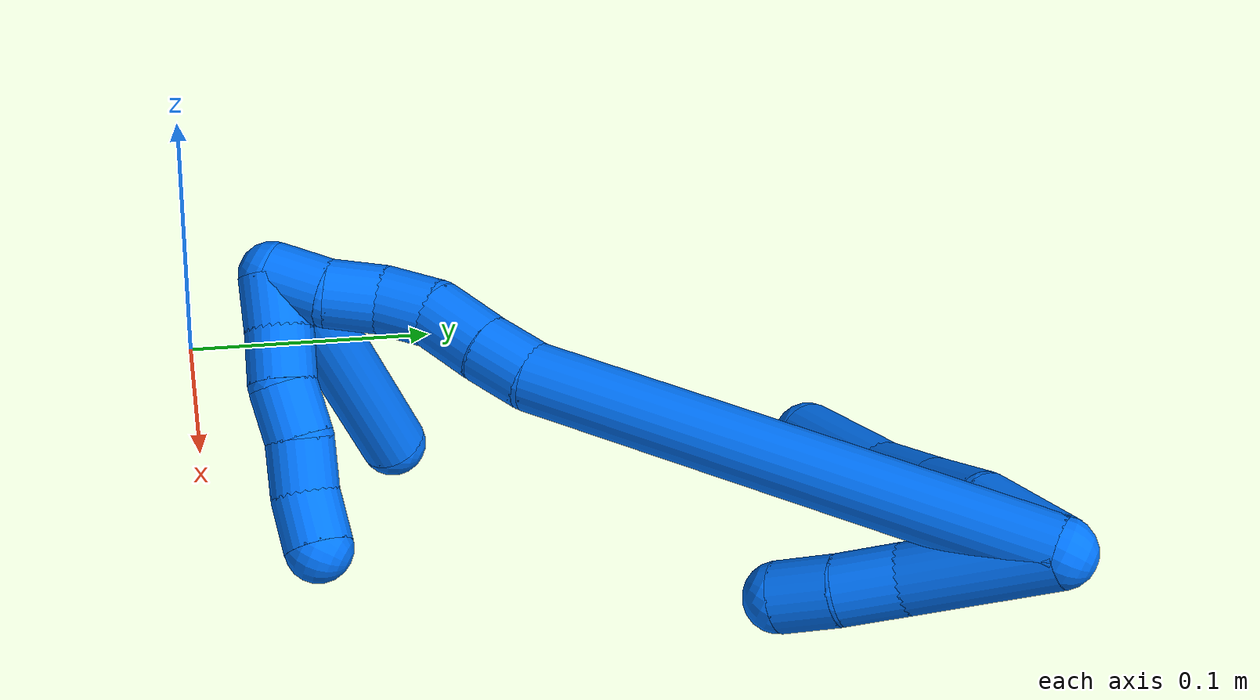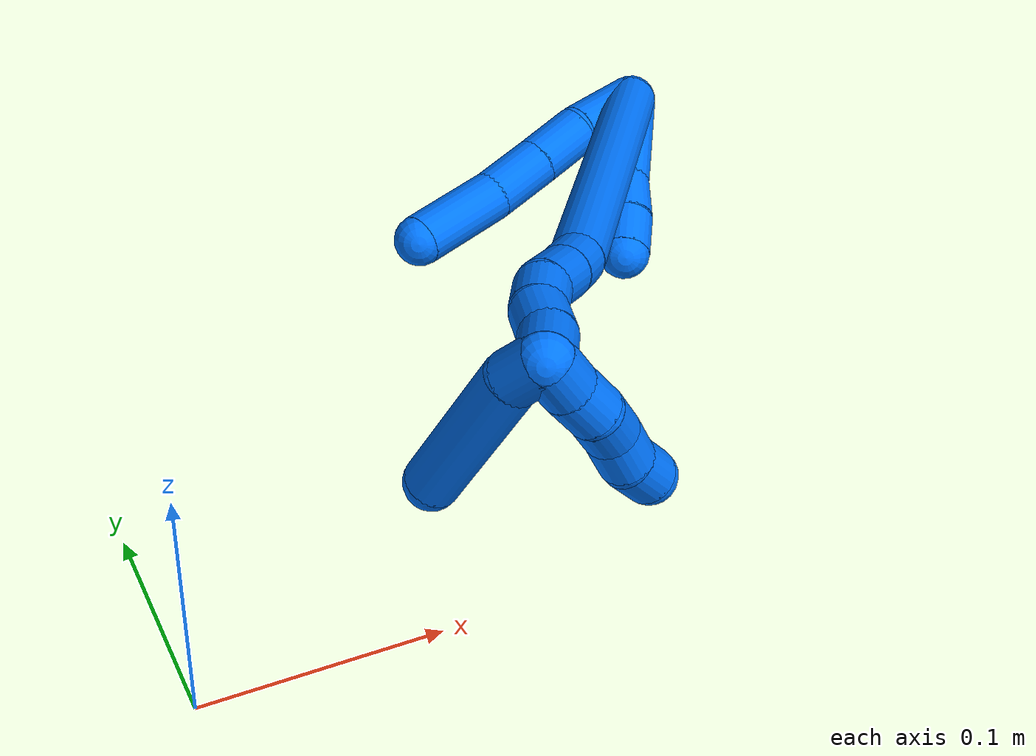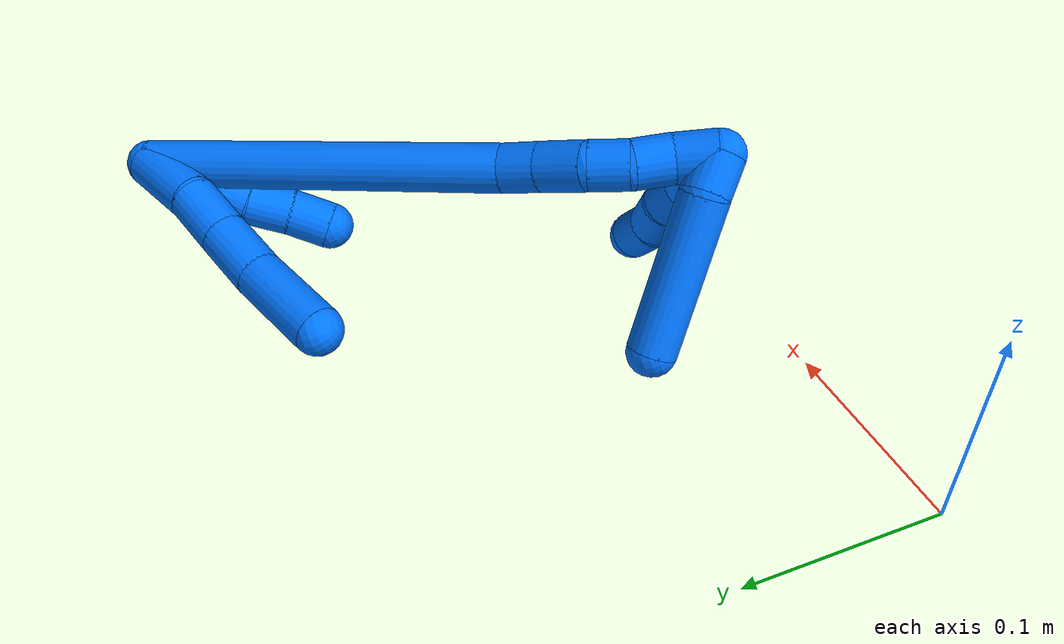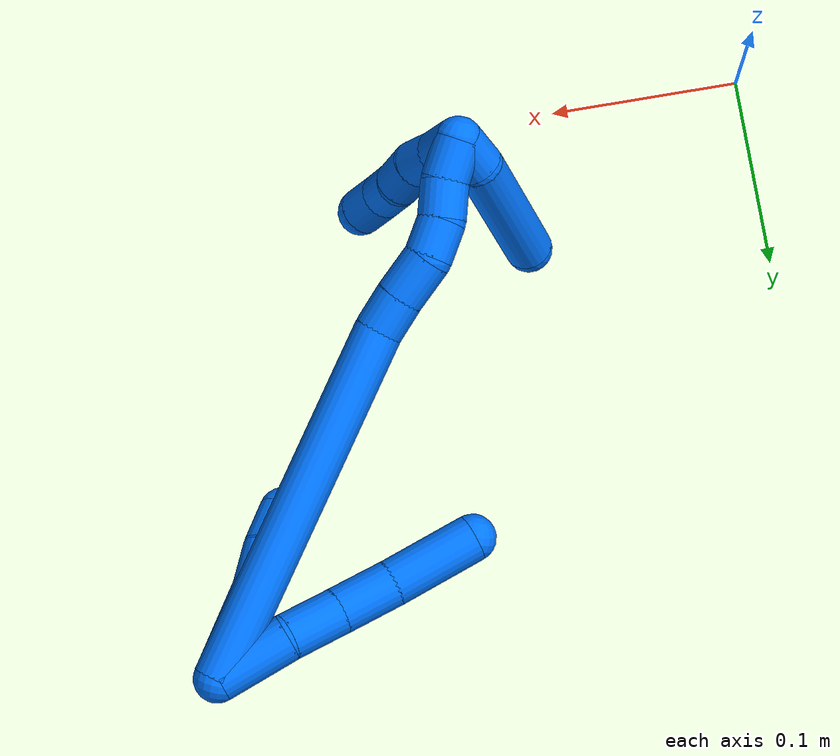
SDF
<sdf version="1.7">
 <world name="default">
  <model name="14">
   <static>0</static>
   <link name="14">
    <collision name="collision-cylinder-e_1_2_8">
     <pose>-0.015423 0.002612 -0.013021 -2.94362 -0.859909 2.71504</pose>
     <geometry><cylinder><radius>0.0125</radius><length>0.040704</length></cylinder></geometry>
     <surface>
      <friction><ode><mu>1.16</mu><mu2>1.16</mu2><slip1>0</slip1><slip2>0</slip2></ode></friction>
      <contact><ode><kp>1e+06</kp><kd>1</kd><max_vel>0</max_vel><min_depth>0.001</min_depth></ode></contact>
     </surface>
    </collision>
    <visual name="visual-cylinder-e_1_2_8">
     <pose>-0.015423 0.002612 -0.013021 -2.94362 -0.859909 2.71504</pose>
     <geometry><cylinder><radius>0.0125</radius><length>0.040704</length></cylinder></geometry>
     <material><ambient>0 0.462745 1 1</ambient></material>
    </visual>
    <collision name="collision-cylinder-e_2_8_9">
     <pose>-0.042711 0.009616 -0.033695 -2.62064 -0.931353 2.16629</pose>
     <geometry><cylinder><radius>0.0125</radius><length>0.029576</length></cylinder></geometry>
     <surface>
      <friction><ode><mu>1.16</mu><mu2>1.16</mu2><slip1>0</slip1><slip2>0</slip2></ode></friction>
      <contact><ode><kp>1e+06</kp><kd>1</kd><max_vel>0</max_vel><min_depth>0.001</min_depth></ode></contact>
     </surface>
    </collision>
    <visual name="visual-cylinder-e_2_8_9">
     <pose>-0.042711 0.009616 -0.033695 -2.62064 -0.931353 2.16629</pose>
     <geometry><cylinder><radius>0.0125</radius><length>0.029576</length></cylinder></geometry>
     <material><ambient>0 0.462745 1 1</ambient></material>
    </visual>
    <collision name="collision-cylinder-e_3_9_10">
     <pose>-0.067188 0.018369 -0.049759 -2.66322 -0.9265 2.23327</pose>
     <geometry><cylinder><radius>0.0125</radius><length>0.031544</length></cylinder></geometry>
     <surface>
      <friction><ode><mu>1.16</mu><mu2>1.16</mu2><slip1>0</slip1><slip2>0</slip2></ode></friction>
      <contact><ode><kp>1e+06</kp><kd>1</kd><max_vel>0</max_vel><min_depth>0.001</min_depth></ode></contact>
     </surface>
    </collision>
    <visual name="visual-cylinder-e_3_9_10">
     <pose>-0.067188 0.018369 -0.049759 -2.66322 -0.9265 2.23327</pose>
     <geometry><cylinder><radius>0.0125</radius><length>0.031544</length></cylinder></geometry>
     <material><ambient>0 0.462745 1 1</ambient></material>
    </visual>
    <collision name="collision-cylinder-e_4_10_6">
     <pose>-0.098491 0.026777 -0.072812 -2.87192 -0.888338 2.58619</pose>
     <geometry><cylinder><radius>0.0125</radius><length>0.048175</length></cylinder></geometry>
     <surface>
      <friction><ode><mu>1.16</mu><mu2>1.16</mu2><slip1>0</slip1><slip2>0</slip2></ode></friction>
      <contact><ode><kp>1e+06</kp><kd>1</kd><max_vel>0</max_vel><min_depth>0.001</min_depth></ode></contact>
     </surface>
    </collision>
    <visual name="visual-cylinder-e_4_10_6">
     <pose>-0.098491 0.026777 -0.072812 -2.87192 -0.888338 2.58619</pose>
     <geometry><cylinder><radius>0.0125</radius><length>0.048175</length></cylinder></geometry>
     <material><ambient>0 0.462745 1 1</ambient></material>
    </visual>
    <collision name="collision-cylinder-e_1_2_11">
     <pose>-0.007092 0.017433 -0.019653 -2.41598 -0.263671 0.672134</pose>
     <geometry><cylinder><radius>0.0125</radius><length>0.054423</length></cylinder></geometry>
     <surface>
      <friction><ode><mu>1.16</mu><mu2>1.16</mu2><slip1>0</slip1><slip2>0</slip2></ode></friction>
      <contact><ode><kp>1e+06</kp><kd>1</kd><max_vel>0</max_vel><min_depth>0.001</min_depth></ode></contact>
     </surface>
    </collision>
    <visual name="visual-cylinder-e_1_2_11">
     <pose>-0.007092 0.017433 -0.019653 -2.41598 -0.263671 0.672134</pose>
     <geometry><cylinder><radius>0.0125</radius><length>0.054423</length></cylinder></geometry>
     <material><ambient>0 0.462745 1 1</ambient></material>
    </visual>
    <collision name="collision-cylinder-e_2_11_12">
     <pose>-0.015649 0.042216 -0.048288 -2.45578 -0.125548 0.348557</pose>
     <geometry><cylinder><radius>0.0125</radius><length>0.023394</length></cylinder></geometry>
     <surface>
      <friction><ode><mu>1.16</mu><mu2>1.16</mu2><slip1>0</slip1><slip2>0</slip2></ode></friction>
      <contact><ode><kp>1e+06</kp><kd>1</kd><max_vel>0</max_vel><min_depth>0.001</min_depth></ode></contact>
     </surface>
    </collision>
    <visual name="visual-cylinder-e_2_11_12">
     <pose>-0.015649 0.042216 -0.048288 -2.45578 -0.125548 0.348557</pose>
     <geometry><cylinder><radius>0.0125</radius><length>0.023394</length></cylinder></geometry>
     <material><ambient>0 0.462745 1 1</ambient></material>
    </visual>
    <collision name="collision-cylinder-e_3_12_5">
     <pose>-0.019961 0.056199 -0.06569 -2.47439 -0.259608 0.720473</pose>
     <geometry><cylinder><radius>0.0125</radius><length>0.022183</length></cylinder></geometry>
     <surface>
      <friction><ode><mu>1.16</mu><mu2>1.16</mu2><slip1>0</slip1><slip2>0</slip2></ode></friction>
      <contact><ode><kp>1e+06</kp><kd>1</kd><max_vel>0</max_vel><min_depth>0.001</min_depth></ode></contact>
     </surface>
    </collision>
    <visual name="visual-cylinder-e_3_12_5">
     <pose>-0.019961 0.056199 -0.06569 -2.47439 -0.259608 0.720473</pose>
     <geometry><cylinder><radius>0.0125</radius><length>0.022183</length></cylinder></geometry>
     <material><ambient>0 0.462745 1 1</ambient></material>
    </visual>
    <collision name="collision-cylinder-e_1_2_13">
     <pose>-0.023141 0.018906 -0.091862 -2.93862 -0.241903 1.7468</pose>
     <geometry><cylinder><radius>0.0125</radius><length>0.193201</length></cylinder></geometry>
     <surface>
      <friction><ode><mu>1.16</mu><mu2>1.16</mu2><slip1>0</slip1><slip2>0</slip2></ode></friction>
      <contact><ode><kp>1e+06</kp><kd>1</kd><max_vel>0</max_vel><min_depth>0.001</min_depth></ode></contact>
     </surface>
    </collision>
    <visual name="visual-cylinder-e_1_2_13">
     <pose>-0.023141 0.018906 -0.091862 -2.93862 -0.241903 1.7468</pose>
     <geometry><cylinder><radius>0.0125</radius><length>0.193201</length></cylinder></geometry>
     <material><ambient>0 0.462745 1 1</ambient></material>
    </visual>
    <collision name="collision-cylinder-e_2_13_14">
     <pose>-0.049678 0.037925 -0.193407 -3.12988 -0.337413 3.07287</pose>
     <geometry><cylinder><radius>0.0125</radius><length>0.020523</length></cylinder></geometry>
     <surface>
      <friction><ode><mu>1.16</mu><mu2>1.16</mu2><slip1>0</slip1><slip2>0</slip2></ode></friction>
      <contact><ode><kp>1e+06</kp><kd>1</kd><max_vel>0</max_vel><min_depth>0.001</min_depth></ode></contact>
     </surface>
    </collision>
    <visual name="visual-cylinder-e_2_13_14">
     <pose>-0.049678 0.037925 -0.193407 -3.12988 -0.337413 3.07287</pose>
     <geometry><cylinder><radius>0.0125</radius><length>0.020523</length></cylinder></geometry>
     <material><ambient>0 0.462745 1 1</ambient></material>
    </visual>
    <collision name="collision-cylinder-e_3_14_15">
     <pose>-0.057759 0.037613 -0.21438 3.1039 -0.392951 -2.95277</pose>
     <geometry><cylinder><radius>0.0125</radius><length>0.024461</length></cylinder></geometry>
     <surface>
      <friction><ode><mu>1.16</mu><mu2>1.16</mu2><slip1>0</slip1><slip2>0</slip2></ode></friction>
      <contact><ode><kp>1e+06</kp><kd>1</kd><max_vel>0</max_vel><min_depth>0.001</min_depth></ode></contact>
     </surface>
    </collision>
    <visual name="visual-cylinder-e_3_14_15">
     <pose>-0.057759 0.037613 -0.21438 3.1039 -0.392951 -2.95277</pose>
     <geometry><cylinder><radius>0.0125</radius><length>0.024461</length></cylinder></geometry>
     <material><ambient>0 0.462745 1 1</ambient></material>
    </visual>
    <collision name="collision-cylinder-e_4_15_16">
     <pose>-0.064119 0.03952 -0.235308 -2.90408 -0.167542 1.22643</pose>
     <geometry><cylinder><radius>0.0125</radius><length>0.020113</length></cylinder></geometry>
     <surface>
      <friction><ode><mu>1.16</mu><mu2>1.16</mu2><slip1>0</slip1><slip2>0</slip2></ode></friction>
      <contact><ode><kp>1e+06</kp><kd>1</kd><max_vel>0</max_vel><min_depth>0.001</min_depth></ode></contact>
     </surface>
    </collision>
    <visual name="visual-cylinder-e_4_15_16">
     <pose>-0.064119 0.03952 -0.235308 -2.90408 -0.167542 1.22643</pose>
     <geometry><cylinder><radius>0.0125</radius><length>0.020113</length></cylinder></geometry>
     <material><ambient>0 0.462745 1 1</ambient></material>
    </visual>
    <collision name="collision-cylinder-e_5_16_17">
     <pose>-0.06486 0.045086 -0.254481 -2.81476 0.092733 -0.548628</pose>
     <geometry><cylinder><radius>0.0125</radius><length>0.020225</length></cylinder></geometry>
     <surface>
      <friction><ode><mu>1.16</mu><mu2>1.16</mu2><slip1>0</slip1><slip2>0</slip2></ode></friction>
      <contact><ode><kp>1e+06</kp><kd>1</kd><max_vel>0</max_vel><min_depth>0.001</min_depth></ode></contact>
     </surface>
    </collision>
    <visual name="visual-cylinder-e_5_16_17">
     <pose>-0.06486 0.045086 -0.254481 -2.81476 0.092733 -0.548628</pose>
     <geometry><cylinder><radius>0.0125</radius><length>0.020225</length></cylinder></geometry>
     <material><ambient>0 0.462745 1 1</ambient></material>
    </visual>
    <collision name="collision-cylinder-e_6_17_1">
     <pose>-0.065277 0.050227 -0.274498 -2.96147 -0.126439 1.2228</pose>
     <geometry><cylinder><radius>0.0125</radius><length>0.021476</length></cylinder></geometry>
     <surface>
      <friction><ode><mu>1.16</mu><mu2>1.16</mu2><slip1>0</slip1><slip2>0</slip2></ode></friction>
      <contact><ode><kp>1e+06</kp><kd>1</kd><max_vel>0</max_vel><min_depth>0.001</min_depth></ode></contact>
     </surface>
    </collision>
    <visual name="visual-cylinder-e_6_17_1">
     <pose>-0.065277 0.050227 -0.274498 -2.96147 -0.126439 1.2228</pose>
     <geometry><cylinder><radius>0.0125</radius><length>0.021476</length></cylinder></geometry>
     <material><ambient>0 0.462745 1 1</ambient></material>
    </visual>
    <collision name="collision-cylinder-e_1_1_18">
     <pose>-0.063667 0.0599 -0.279417 -0.94927 0.301006 -0.155524</pose>
     <geometry><cylinder><radius>0.0125</radius><length>0.02</length></cylinder></geometry>
     <surface>
      <friction><ode><mu>1.16</mu><mu2>1.16</mu2><slip1>0</slip1><slip2>0</slip2></ode></friction>
      <contact><ode><kp>1e+06</kp><kd>1</kd><max_vel>0</max_vel><min_depth>0.001</min_depth></ode></contact>
     </surface>
    </collision>
    <visual name="visual-cylinder-e_1_1_18">
     <pose>-0.063667 0.0599 -0.279417 -0.94927 0.301006 -0.155524</pose>
     <geometry><cylinder><radius>0.0125</radius><length>0.02</length></cylinder></geometry>
     <material><ambient>0 0.462745 1 1</ambient></material>
    </visual>
    <collision name="collision-cylinder-e_2_18_19">
     <pose>-0.056791 0.075274 -0.268679 -0.973476 0.401762 -0.214693</pose>
     <geometry><cylinder><radius>0.0125</radius><length>0.02</length></cylinder></geometry>
     <surface>
      <friction><ode><mu>1.16</mu><mu2>1.16</mu2><slip1>0</slip1><slip2>0</slip2></ode></friction>
      <contact><ode><kp>1e+06</kp><kd>1</kd><max_vel>0</max_vel><min_depth>0.001</min_depth></ode></contact>
     </surface>
    </collision>
    <visual name="visual-cylinder-e_2_18_19">
     <pose>-0.056791 0.075274 -0.268679 -0.973476 0.401762 -0.214693</pose>
     <geometry><cylinder><radius>0.0125</radius><length>0.02</length></cylinder></geometry>
     <material><ambient>0 0.462745 1 1</ambient></material>
    </visual>
    <collision name="collision-cylinder-e_3_19_20">
     <pose>-0.050833 0.089762 -0.256539 -0.779167 0.206223 -0.084919</pose>
     <geometry><cylinder><radius>0.0125</radius><length>0.02</length></cylinder></geometry>
     <surface>
      <friction><ode><mu>1.16</mu><mu2>1.16</mu2><slip1>0</slip1><slip2>0</slip2></ode></friction>
      <contact><ode><kp>1e+06</kp><kd>1</kd><max_vel>0</max_vel><min_depth>0.001</min_depth></ode></contact>
     </surface>
    </collision>
    <visual name="visual-cylinder-e_3_19_20">
     <pose>-0.050833 0.089762 -0.256539 -0.779167 0.206223 -0.084919</pose>
     <geometry><cylinder><radius>0.0125</radius><length>0.02</length></cylinder></geometry>
     <material><ambient>0 0.462745 1 1</ambient></material>
    </visual>
    <collision name="collision-cylinder-e_4_20_21">
     <pose>-0.046881 0.104888 -0.244251 -0.997693 0.191621 -0.104621</pose>
     <geometry><cylinder><radius>0.0125</radius><length>0.02</length></cylinder></geometry>
     <surface>
      <friction><ode><mu>1.16</mu><mu2>1.16</mu2><slip1>0</slip1><slip2>0</slip2></ode></friction>
      <contact><ode><kp>1e+06</kp><kd>1</kd><max_vel>0</max_vel><min_depth>0.001</min_depth></ode></contact>
     </surface>
    </collision>
    <visual name="visual-cylinder-e_4_20_21">
     <pose>-0.046881 0.104888 -0.244251 -0.997693 0.191621 -0.104621</pose>
     <geometry><cylinder><radius>0.0125</radius><length>0.02</length></cylinder></geometry>
     <material><ambient>0 0.462745 1 1</ambient></material>
    </visual>
    <collision name="collision-cylinder-e_5_21_4">
     <pose>-0.04121 0.119617 -0.232308 -0.774723 0.386211 -0.159215</pose>
     <geometry><cylinder><radius>0.0125</radius><length>0.02</length></cylinder></geometry>
     <surface>
      <friction><ode><mu>1.16</mu><mu2>1.16</mu2><slip1>0</slip1><slip2>0</slip2></ode></friction>
      <contact><ode><kp>1e+06</kp><kd>1</kd><max_vel>0</max_vel><min_depth>0.001</min_depth></ode></contact>
     </surface>
    </collision>
    <visual name="visual-cylinder-e_5_21_4">
     <pose>-0.04121 0.119617 -0.232308 -0.774723 0.386211 -0.159215</pose>
     <geometry><cylinder><radius>0.0125</radius><length>0.02</length></cylinder></geometry>
     <material><ambient>0 0.462745 1 1</ambient></material>
    </visual>
    <collision name="collision-cylinder-e_1_1_22">
     <pose>-0.074058 0.055799 -0.279102 -0.557551 -0.820361 0.247657</pose>
     <geometry><cylinder><radius>0.0125</radius><length>0.020309</length></cylinder></geometry>
     <surface>
      <friction><ode><mu>1.16</mu><mu2>1.16</mu2><slip1>0</slip1><slip2>0</slip2></ode></friction>
      <contact><ode><kp>1e+06</kp><kd>1</kd><max_vel>0</max_vel><min_depth>0.001</min_depth></ode></contact>
     </surface>
    </collision>
    <visual name="visual-cylinder-e_1_1_22">
     <pose>-0.074058 0.055799 -0.279102 -0.557551 -0.820361 0.247657</pose>
     <geometry><cylinder><radius>0.0125</radius><length>0.020309</length></cylinder></geometry>
     <material><ambient>0 0.462745 1 1</ambient></material>
    </visual>
    <collision name="collision-cylinder-e_2_22_3">
     <pose>-0.103902 0.083206 -0.25039 -0.804872 -0.597506 0.2607</pose>
     <geometry><cylinder><radius>0.0125</radius><length>0.079691</length></cylinder></geometry>
     <surface>
      <friction><ode><mu>1.16</mu><mu2>1.16</mu2><slip1>0</slip1><slip2>0</slip2></ode></friction>
      <contact><ode><kp>1e+06</kp><kd>1</kd><max_vel>0</max_vel><min_depth>0.001</min_depth></ode></contact>
     </surface>
    </collision>
    <visual name="visual-cylinder-e_2_22_3">
     <pose>-0.103902 0.083206 -0.25039 -0.804872 -0.597506 0.2607</pose>
     <geometry><cylinder><radius>0.0125</radius><length>0.079691</length></cylinder></geometry>
     <material><ambient>0 0.462745 1 1</ambient></material>
    </visual>
    <collision name="collision-sphere-3">
     <pose>-0.126318 0.106949 -0.227555 0 -0 0</pose>
     <geometry><sphere><radius>0.0125</radius></sphere></geometry>
     <surface>
      <friction><ode><mu>1.16</mu><mu2>1.16</mu2><slip1>0</slip1><slip2>0</slip2></ode></friction>
      <contact><ode><kp>1e+06</kp><kd>1</kd><max_vel>0</max_vel><min_depth>0.001</min_depth></ode></contact>
     </surface>
    </collision>
    <visual name="visual-sphere-3">
     <pose>-0.126318 0.106949 -0.227555 0 -0 0</pose>
     <geometry><sphere><radius>0.0125</radius></sphere></geometry>
     <material><ambient>0 0.462745 1 1</ambient></material>
    </visual>
    <collision name="collision-sphere-22">
     <pose>-0.081485 0.059463 -0.273226 0 -0 0</pose>
     <geometry><sphere><radius>0.0125</radius></sphere></geometry>
     <surface>
      <friction><ode><mu>1.16</mu><mu2>1.16</mu2><slip1>0</slip1><slip2>0</slip2></ode></friction>
      <contact><ode><kp>1e+06</kp><kd>1</kd><max_vel>0</max_vel><min_depth>0.001</min_depth></ode></contact>
     </surface>
    </collision>
    <visual name="visual-sphere-22">
     <pose>-0.081485 0.059463 -0.273226 0 -0 0</pose>
     <geometry><sphere><radius>0.0125</radius></sphere></geometry>
     <material><ambient>0 0.462745 1 1</ambient></material>
    </visual>
    <collision name="collision-sphere-4">
     <pose>-0.037443 0.126097 -0.225689 0 -0 0</pose>
     <geometry><sphere><radius>0.0125</radius></sphere></geometry>
     <surface>
      <friction><ode><mu>1.16</mu><mu2>1.16</mu2><slip1>0</slip1><slip2>0</slip2></ode></friction>
      <contact><ode><kp>1e+06</kp><kd>1</kd><max_vel>0</max_vel><min_depth>0.001</min_depth></ode></contact>
     </surface>
    </collision>
    <visual name="visual-sphere-4">
     <pose>-0.037443 0.126097 -0.225689 0 -0 0</pose>
     <geometry><sphere><radius>0.0125</radius></sphere></geometry>
     <material><ambient>0 0.462745 1 1</ambient></material>
    </visual>
    <collision name="collision-sphere-21">
     <pose>-0.044977 0.113137 -0.238928 0 -0 0</pose>
     <geometry><sphere><radius>0.0125</radius></sphere></geometry>
     <surface>
      <friction><ode><mu>1.16</mu><mu2>1.16</mu2><slip1>0</slip1><slip2>0</slip2></ode></friction>
      <contact><ode><kp>1e+06</kp><kd>1</kd><max_vel>0</max_vel><min_depth>0.001</min_depth></ode></contact>
     </surface>
    </collision>
    <visual name="visual-sphere-21">
     <pose>-0.044977 0.113137 -0.238928 0 -0 0</pose>
     <geometry><sphere><radius>0.0125</radius></sphere></geometry>
     <material><ambient>0 0.462745 1 1</ambient></material>
    </visual>
    <collision name="collision-sphere-20">
     <pose>-0.048786 0.09664 -0.249575 0 -0 0</pose>
     <geometry><sphere><radius>0.0125</radius></sphere></geometry>
     <surface>
      <friction><ode><mu>1.16</mu><mu2>1.16</mu2><slip1>0</slip1><slip2>0</slip2></ode></friction>
      <contact><ode><kp>1e+06</kp><kd>1</kd><max_vel>0</max_vel><min_depth>0.001</min_depth></ode></contact>
     </surface>
    </collision>
    <visual name="visual-sphere-20">
     <pose>-0.048786 0.09664 -0.249575 0 -0 0</pose>
     <geometry><sphere><radius>0.0125</radius></sphere></geometry>
     <material><ambient>0 0.462745 1 1</ambient></material>
    </visual>
    <collision name="collision-sphere-11">
     <pose>-0.014184 0.034867 -0.039307 0 -0 0</pose>
     <geometry><sphere><radius>0.0125</radius></sphere></geometry>
     <surface>
      <friction><ode><mu>1.16</mu><mu2>1.16</mu2><slip1>0</slip1><slip2>0</slip2></ode></friction>
      <contact><ode><kp>1e+06</kp><kd>1</kd><max_vel>0</max_vel><min_depth>0.001</min_depth></ode></contact>
     </surface>
    </collision>
    <visual name="visual-sphere-11">
     <pose>-0.014184 0.034867 -0.039307 0 -0 0</pose>
     <geometry><sphere><radius>0.0125</radius></sphere></geometry>
     <material><ambient>0 0.462745 1 1</ambient></material>
    </visual>
    <collision name="collision-sphere-6">
     <pose>-0.117183 0.030825 -0.087455 0 -0 0</pose>
     <geometry><sphere><radius>0.0125</radius></sphere></geometry>
     <surface>
      <friction><ode><mu>1.16</mu><mu2>1.16</mu2><slip1>0</slip1><slip2>0</slip2></ode></friction>
      <contact><ode><kp>1e+06</kp><kd>1</kd><max_vel>0</max_vel><min_depth>0.001</min_depth></ode></contact>
     </surface>
    </collision>
    <visual name="visual-sphere-6">
     <pose>-0.117183 0.030825 -0.087455 0 -0 0</pose>
     <geometry><sphere><radius>0.0125</radius></sphere></geometry>
     <material><ambient>0 0.462745 1 1</ambient></material>
    </visual>
    <collision name="collision-sphere-10">
     <pose>-0.079798 0.02273 -0.058169 0 -0 0</pose>
     <geometry><sphere><radius>0.0125</radius></sphere></geometry>
     <surface>
      <friction><ode><mu>1.16</mu><mu2>1.16</mu2><slip1>0</slip1><slip2>0</slip2></ode></friction>
      <contact><ode><kp>1e+06</kp><kd>1</kd><max_vel>0</max_vel><min_depth>0.001</min_depth></ode></contact>
     </surface>
    </collision>
    <visual name="visual-sphere-10">
     <pose>-0.079798 0.02273 -0.058169 0 -0 0</pose>
     <geometry><sphere><radius>0.0125</radius></sphere></geometry>
     <material><ambient>0 0.462745 1 1</ambient></material>
    </visual>
    <collision name="collision-sphere-9">
     <pose>-0.054578 0.014008 -0.041349 0 -0 0</pose>
     <geometry><sphere><radius>0.0125</radius></sphere></geometry>
     <surface>
      <friction><ode><mu>1.16</mu><mu2>1.16</mu2><slip1>0</slip1><slip2>0</slip2></ode></friction>
      <contact><ode><kp>1e+06</kp><kd>1</kd><max_vel>0</max_vel><min_depth>0.001</min_depth></ode></contact>
     </surface>
    </collision>
    <visual name="visual-sphere-9">
     <pose>-0.054578 0.014008 -0.041349 0 -0 0</pose>
     <geometry><sphere><radius>0.0125</radius></sphere></geometry>
     <material><ambient>0 0.462745 1 1</ambient></material>
    </visual>
    <collision name="collision-sphere-2">
     <geometry><sphere><radius>0.0125</radius></sphere></geometry>
     <surface>
      <friction><ode><mu>1.16</mu><mu2>1.16</mu2><slip1>0</slip1><slip2>0</slip2></ode></friction>
      <contact><ode><kp>1e+06</kp><kd>1</kd><max_vel>0</max_vel><min_depth>0.001</min_depth></ode></contact>
     </surface>
    </collision>
    <visual name="visual-sphere-2">
     <geometry><sphere><radius>0.0125</radius></sphere></geometry>
     <material><ambient>0 0.462745 1 1</ambient></material>
    </visual>
    <collision name="collision-sphere-19">
     <pose>-0.052881 0.082884 -0.263503 0 -0 0</pose>
     <geometry><sphere><radius>0.0125</radius></sphere></geometry>
     <surface>
      <friction><ode><mu>1.16</mu><mu2>1.16</mu2><slip1>0</slip1><slip2>0</slip2></ode></friction>
      <contact><ode><kp>1e+06</kp><kd>1</kd><max_vel>0</max_vel><min_depth>0.001</min_depth></ode></contact>
     </surface>
    </collision>
    <visual name="visual-sphere-19">
     <pose>-0.052881 0.082884 -0.263503 0 -0 0</pose>
     <geometry><sphere><radius>0.0125</radius></sphere></geometry>
     <material><ambient>0 0.462745 1 1</ambient></material>
    </visual>
    <collision name="collision-sphere-8">
     <pose>-0.030845 0.005224 -0.026041 0 -0 0</pose>
     <geometry><sphere><radius>0.0125</radius></sphere></geometry>
     <surface>
      <friction><ode><mu>1.16</mu><mu2>1.16</mu2><slip1>0</slip1><slip2>0</slip2></ode></friction>
      <contact><ode><kp>1e+06</kp><kd>1</kd><max_vel>0</max_vel><min_depth>0.001</min_depth></ode></contact>
     </surface>
    </collision>
    <visual name="visual-sphere-8">
     <pose>-0.030845 0.005224 -0.026041 0 -0 0</pose>
     <geometry><sphere><radius>0.0125</radius></sphere></geometry>
     <material><ambient>0 0.462745 1 1</ambient></material>
    </visual>
    <collision name="collision-sphere-12">
     <pose>-0.017113 0.049566 -0.057269 0 -0 0</pose>
     <geometry><sphere><radius>0.0125</radius></sphere></geometry>
     <surface>
      <friction><ode><mu>1.16</mu><mu2>1.16</mu2><slip1>0</slip1><slip2>0</slip2></ode></friction>
      <contact><ode><kp>1e+06</kp><kd>1</kd><max_vel>0</max_vel><min_depth>0.001</min_depth></ode></contact>
     </surface>
    </collision>
    <visual name="visual-sphere-12">
     <pose>-0.017113 0.049566 -0.057269 0 -0 0</pose>
     <geometry><sphere><radius>0.0125</radius></sphere></geometry>
     <material><ambient>0 0.462745 1 1</ambient></material>
    </visual>
    <collision name="collision-sphere-5">
     <pose>-0.022808 0.062832 -0.074111 0 -0 0</pose>
     <geometry><sphere><radius>0.0125</radius></sphere></geometry>
     <surface>
      <friction><ode><mu>1.16</mu><mu2>1.16</mu2><slip1>0</slip1><slip2>0</slip2></ode></friction>
      <contact><ode><kp>1e+06</kp><kd>1</kd><max_vel>0</max_vel><min_depth>0.001</min_depth></ode></contact>
     </surface>
    </collision>
    <visual name="visual-sphere-5">
     <pose>-0.022808 0.062832 -0.074111 0 -0 0</pose>
     <geometry><sphere><radius>0.0125</radius></sphere></geometry>
     <material><ambient>0 0.462745 1 1</ambient></material>
    </visual>
    <collision name="collision-sphere-13">
     <pose>-0.046281 0.037812 -0.183725 0 -0 0</pose>
     <geometry><sphere><radius>0.0125</radius></sphere></geometry>
     <surface>
      <friction><ode><mu>1.16</mu><mu2>1.16</mu2><slip1>0</slip1><slip2>0</slip2></ode></friction>
      <contact><ode><kp>1e+06</kp><kd>1</kd><max_vel>0</max_vel><min_depth>0.001</min_depth></ode></contact>
     </surface>
    </collision>
    <visual name="visual-sphere-13">
     <pose>-0.046281 0.037812 -0.183725 0 -0 0</pose>
     <geometry><sphere><radius>0.0125</radius></sphere></geometry>
     <material><ambient>0 0.462745 1 1</ambient></material>
    </visual>
    <collision name="collision-sphere-14">
     <pose>-0.053075 0.038039 -0.203089 0 -0 0</pose>
     <geometry><sphere><radius>0.0125</radius></sphere></geometry>
     <surface>
      <friction><ode><mu>1.16</mu><mu2>1.16</mu2><slip1>0</slip1><slip2>0</slip2></ode></friction>
      <contact><ode><kp>1e+06</kp><kd>1</kd><max_vel>0</max_vel><min_depth>0.001</min_depth></ode></contact>
     </surface>
    </collision>
    <visual name="visual-sphere-14">
     <pose>-0.053075 0.038039 -0.203089 0 -0 0</pose>
     <geometry><sphere><radius>0.0125</radius></sphere></geometry>
     <material><ambient>0 0.462745 1 1</ambient></material>
    </visual>
    <collision name="collision-sphere-15">
     <pose>-0.062442 0.037187 -0.22567 0 -0 0</pose>
     <geometry><sphere><radius>0.0125</radius></sphere></geometry>
     <surface>
      <friction><ode><mu>1.16</mu><mu2>1.16</mu2><slip1>0</slip1><slip2>0</slip2></ode></friction>
      <contact><ode><kp>1e+06</kp><kd>1</kd><max_vel>0</max_vel><min_depth>0.001</min_depth></ode></contact>
     </surface>
    </collision>
    <visual name="visual-sphere-15">
     <pose>-0.062442 0.037187 -0.22567 0 -0 0</pose>
     <geometry><sphere><radius>0.0125</radius></sphere></geometry>
     <material><ambient>0 0.462745 1 1</ambient></material>
    </visual>
    <collision name="collision-sphere-16">
     <pose>-0.065796 0.041853 -0.244945 0 -0 0</pose>
     <geometry><sphere><radius>0.0125</radius></sphere></geometry>
     <surface>
      <friction><ode><mu>1.16</mu><mu2>1.16</mu2><slip1>0</slip1><slip2>0</slip2></ode></friction>
      <contact><ode><kp>1e+06</kp><kd>1</kd><max_vel>0</max_vel><min_depth>0.001</min_depth></ode></contact>
     </surface>
    </collision>
    <visual name="visual-sphere-16">
     <pose>-0.065796 0.041853 -0.244945 0 -0 0</pose>
     <geometry><sphere><radius>0.0125</radius></sphere></geometry>
     <material><ambient>0 0.462745 1 1</ambient></material>
    </visual>
    <collision name="collision-sphere-17">
     <pose>-0.063923 0.048318 -0.264017 0 -0 0</pose>
     <geometry><sphere><radius>0.0125</radius></sphere></geometry>
     <surface>
      <friction><ode><mu>1.16</mu><mu2>1.16</mu2><slip1>0</slip1><slip2>0</slip2></ode></friction>
      <contact><ode><kp>1e+06</kp><kd>1</kd><max_vel>0</max_vel><min_depth>0.001</min_depth></ode></contact>
     </surface>
    </collision>
    <visual name="visual-sphere-17">
     <pose>-0.063923 0.048318 -0.264017 0 -0 0</pose>
     <geometry><sphere><radius>0.0125</radius></sphere></geometry>
     <material><ambient>0 0.462745 1 1</ambient></material>
    </visual>
    <collision name="collision-sphere-1">
     <pose>-0.066631 0.052135 -0.284978 0 -0 0</pose>
     <geometry><sphere><radius>0.0125</radius></sphere></geometry>
     <surface>
      <friction><ode><mu>1.16</mu><mu2>1.16</mu2><slip1>0</slip1><slip2>0</slip2></ode></friction>
      <contact><ode><kp>1e+06</kp><kd>1</kd><max_vel>0</max_vel><min_depth>0.001</min_depth></ode></contact>
     </surface>
    </collision>
    <visual name="visual-sphere-1">
     <pose>-0.066631 0.052135 -0.284978 0 -0 0</pose>
     <geometry><sphere><radius>0.0125</radius></sphere></geometry>
     <material><ambient>0 0.462745 1 1</ambient></material>
    </visual>
    <collision name="collision-sphere-18">
     <pose>-0.060702 0.067664 -0.273856 0 -0 0</pose>
     <geometry><sphere><radius>0.0125</radius></sphere></geometry>
     <surface>
      <friction><ode><mu>1.16</mu><mu2>1.16</mu2><slip1>0</slip1><slip2>0</slip2></ode></friction>
      <contact><ode><kp>1e+06</kp><kd>1</kd><max_vel>0</max_vel><min_depth>0.001</min_depth></ode></contact>
     </surface>
    </collision>
    <visual name="visual-sphere-18">
     <pose>-0.060702 0.067664 -0.273856 0 -0 0</pose>
     <geometry><sphere><radius>0.0125</radius></sphere></geometry>
     <material><ambient>0 0.462745 1 1</ambient></material>
    </visual>
    <inertial>
     <pose>-0.047771 0.040443 -0.13899 0 -0 0</pose>
     <mass>0.75</mass>
     <inertia><ixx>0.000536</ixx><ixy>0</ixy><ixz>0</ixz><iyy>0.000824</iyy><iyz>0</iyz><izz>1e-06</izz></inertia>
    </inertial>
   </link>
   <pose>0.321005 0.271884 0.048958 -1.96712 -0.218449 -0.326802</pose>
  </model>
 </world>
</sdf>
